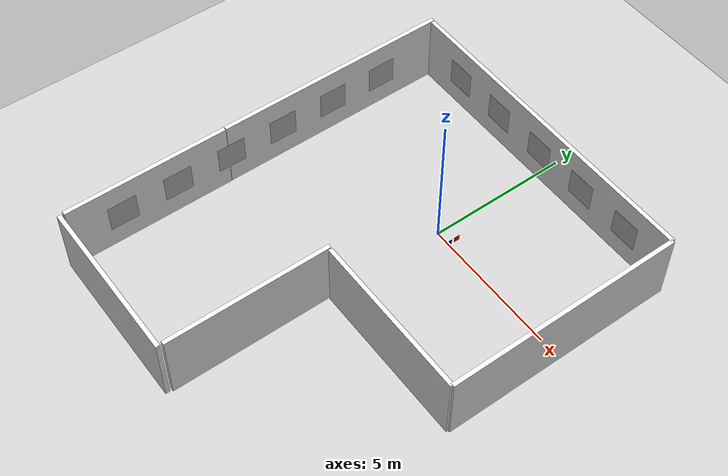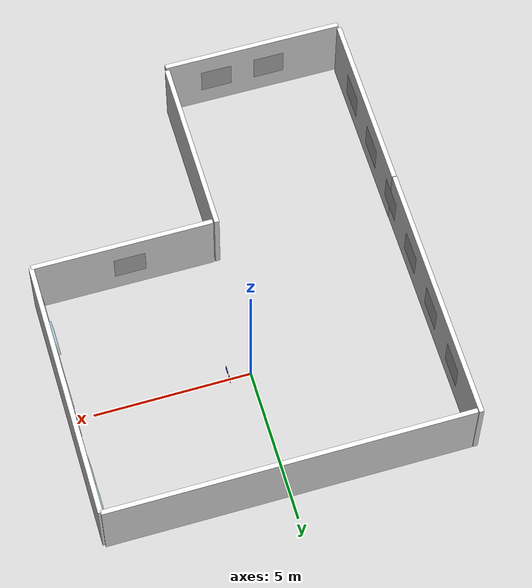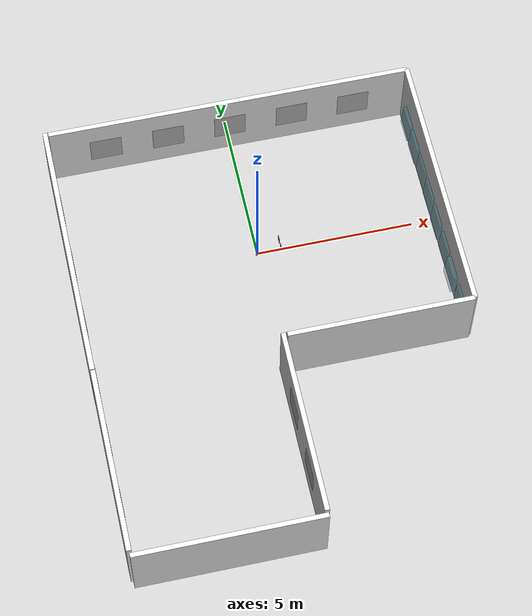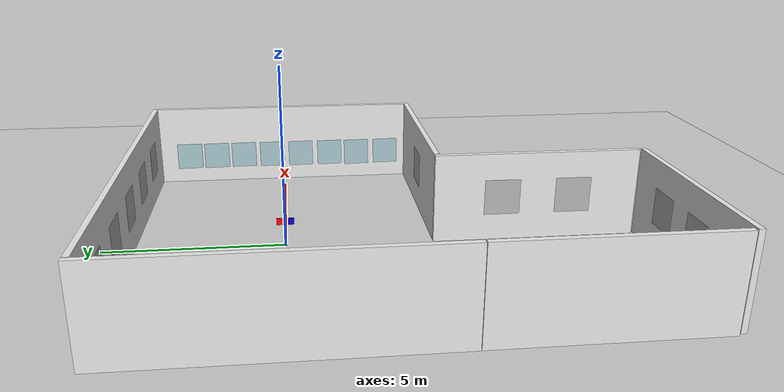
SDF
<sdf version="1.6">
 <world name="default">
  <light name="sun" type="directional">
   <pose>0 0 10 0 -0 0</pose>
   <diffuse>0.8 0.8 0.8 1</diffuse>
   <specular>0.2 0.2 0.2 1</specular>
   <attenuation>
    <range>1000</range>
    <constant>0.9</constant>
    <linear>0.01</linear>
    <quadratic>0.001</quadratic>
   </attenuation>
   <direction>-0.5 0.1 -0.9</direction>
  </light>
  <model name="ground_plane">
   <static>1</static>
   <link name="link">
    <collision name="collision">
     <geometry><plane><normal>0 0 1</normal><size>100 100</size></plane></geometry>
     <surface><friction><ode><mu>100</mu><mu2>50</mu2></ode></friction></surface>
    </collision>
    <visual name="visual">
     <cast_shadows>0</cast_shadows>
     <geometry><plane><normal>0 0 1</normal><size>100 100</size></plane></geometry>
     <material>
      <script><uri>file://media/materials/scripts/gazebo.material</uri><name>Gazebo/Grey</name></script>
     </material>
    </visual>
   </link>
  </model>
  <gravity>0 0 -9.8</gravity>
  <magnetic_field>6e-06 2.3e-05 -4.2e-05</magnetic_field>
  <atmosphere type="adiabatic"/>
  <physics name="default_physics" default="0" type="ode">
   <max_step_size>0.01</max_step_size>
   <real_time_factor>1</real_time_factor>
   <real_time_update_rate>100</real_time_update_rate>
  </physics>
  <scene><ambient>0.4 0.4 0.4 1</ambient><background>0.7 0.7 0.7 1</background><shadows>0</shadows></scene>
  <spherical_coordinates>
   <surface_model>EARTH_WGS84</surface_model>
   <latitude_deg>0</latitude_deg>
   <longitude_deg>0</longitude_deg>
   <elevation>0</elevation>
   <heading_deg>0</heading_deg>
  </spherical_coordinates>
  <model name="office_env_w2">
   <pose>0 4.162 1.25 0 -0 0</pose>
   <link name="Wall_10">
    <visual name="Wall_10_Visual_0">
     <geometry><box><size>11.466 0.15 2.5</size></box></geometry>
     <material>
      <script>
       <uri>model://office_env_w/materials/scripts</uri>
       <uri>model://office_env_w/materials/textures</uri>
       <name>wall_white</name>
      </script>
     </material>
     <meta><layer>0</layer></meta>
    </visual>
    <collision name="Wall_10_Collision_0"><geometry><box><size>11.466 0.15 2.5</size></box></geometry></collision>
   </link>
   <static>1</static>
  </model>
  <model name="office_env_w">
   <pose>5.733 0 1.25 0 -0 1.57</pose>
   <link name="Wall_10">
    <visual name="Wall_10_Visual_0">
     <geometry><box><size>8.324 0.15 2.5</size></box></geometry>
     <material>
      <script>
       <uri>model://office_env_w/materials/scripts</uri>
       <uri>model://office_env_w/materials/textures</uri>
       <name>wall_white</name>
      </script>
     </material>
     <meta><layer>0</layer></meta>
    </visual>
    <collision name="Wall_10_Collision_0"><geometry><box><size>8.324 0.15 2.5</size></box></geometry></collision>
   </link>
   <static>1</static>
  </model>
  <model name="office_env_w3">
   <pose>2.8655 -4.162 1.25 0 -0 0</pose>
   <link name="Wall_10">
    <visual name="Wall_10_Visual_0">
     <geometry><box><size>5.733 0.15 2.5</size></box></geometry>
     <material>
      <script>
       <uri>model://office_env_w/materials/scripts</uri>
       <uri>model://office_env_w/materials/textures</uri>
       <name>wall_white</name>
      </script>
     </material>
     <meta><layer>0</layer></meta>
    </visual>
    <collision name="Wall_10_Collision_0"><geometry><box><size>5.733 0.15 2.5</size></box></geometry></collision>
   </link>
   <static>1</static>
  </model>
  <model name="office_env_w3_clone">
   <pose>-0.116895 -6.96099 1.25 0 -0 1.57</pose>
   <link name="Wall_10">
    <visual name="Wall_10_Visual_0">
     <geometry><box><size>5.733 0.15 2.5</size></box></geometry>
     <material>
      <script>
       <uri>model://office_env_w/materials/scripts</uri>
       <uri>model://office_env_w/materials/textures</uri>
       <name>wall_white</name>
      </script>
     </material>
     <meta><layer>0</layer></meta>
    </visual>
    <collision name="Wall_10_Collision_0"><geometry><box><size>5.733 0.15 2.5</size></box></geometry></collision>
   </link>
   <static>1</static>
  </model>
  <model name="office_env_w_clone">
   <pose>-5.82948 0.079903 1.25 0 -0 1.57</pose>
   <link name="Wall_10">
    <visual name="Wall_10_Visual_0">
     <geometry><box><size>8.324 0.15 2.5</size></box></geometry>
     <material>
      <script>
       <uri>model://office_env_w/materials/scripts</uri>
       <uri>model://office_env_w/materials/textures</uri>
       <name>wall_white</name>
      </script>
     </material>
     <meta><layer>0</layer></meta>
    </visual>
    <collision name="Wall_10_Collision_0"><geometry><box><size>8.324 0.15 2.5</size></box></geometry></collision>
   </link>
   <static>1</static>
  </model>
  <model name="office_env_w3_clone_clone">
   <pose>-5.82704 -6.96526 1.25 0 -0 1.57</pose>
   <link name="Wall_10">
    <visual name="Wall_10_Visual_0">
     <geometry><box><size>5.733 0.15 2.5</size></box></geometry>
     <material>
      <script>
       <uri>model://office_env_w/materials/scripts</uri>
       <uri>model://office_env_w/materials/textures</uri>
       <name>wall_white</name>
      </script>
     </material>
     <meta><layer>0</layer></meta>
    </visual>
    <collision name="Wall_10_Collision_0"><geometry><box><size>5.733 0.15 2.5</size></box></geometry></collision>
   </link>
   <static>1</static>
  </model>
  <model name="office_env_w3_clone_0">
   <pose>-2.96341 -9.9742 1.25 0 -0 0</pose>
   <link name="Wall_10">
    <visual name="Wall_10_Visual_0">
     <geometry><box><size>5.733 0.15 2.5</size></box></geometry>
     <material>
      <script>
       <uri>model://office_env_w/materials/scripts</uri>
       <uri>model://office_env_w/materials/textures</uri>
       <name>wall_white</name>
      </script>
     </material>
     <meta><layer>0</layer></meta>
    </visual>
    <collision name="Wall_10_Collision_0"><geometry><box><size>5.733 0.15 2.5</size></box></geometry></collision>
   </link>
   <static>1</static>
  </model>
  <model name="window_3">
   <link name="link_2">
    <visual name="visual">
     <pose>0 0 0.9 0 -0 0</pose>
     <geometry><box><size>0.8 0.15 0.8</size></box></geometry>
     <material>
      <lighting>1</lighting>
      <ambient>0.1 0.5 0.6 1</ambient>
      <diffuse>0.1 0.5 0.6 1</diffuse>
      <specular>0.01 0.01 0.01 1</specular>
      <emissive>0 0 0 1</emissive>
     </material>
     <transparency>0.7</transparency>
    </visual>
    <collision name="collision">
     <pose>0 0 0.9 0 -0 0</pose>
     <geometry><box><size>0.8 0.15 0.8</size></box></geometry>
    </collision>
   </link>
   <static>1</static>
   <pose>5.55041 3.13004 -0.000428 0.072676 0.011663 1.57159</pose>
  </model>
  <model name="window_3_clone_clone">
   <link name="link_2">
    <visual name="visual">
     <pose>0 0 0.9 0 -0 0</pose>
     <geometry><box><size>0.8 0.15 0.8</size></box></geometry>
     <material>
      <lighting>1</lighting>
      <ambient>0.1 0.5 0.6 1</ambient>
      <diffuse>0.1 0.5 0.6 1</diffuse>
      <specular>0.01 0.01 0.01 1</specular>
      <emissive>0 0 0 1</emissive>
     </material>
     <transparency>0.7</transparency>
    </visual>
    <collision name="collision">
     <pose>0 0 0.9 0 -0 0</pose>
     <geometry><box><size>0.8 0.15 0.8</size></box></geometry>
    </collision>
   </link>
   <static>1</static>
   <pose>5.57835 0.394375 -0.000428 0.072676 0.011663 1.57159</pose>
  </model>
  <model name="window_3_clone_clone_0">
   <link name="link_2">
    <visual name="visual">
     <pose>0 0 0.9 0 -0 0</pose>
     <geometry><box><size>0.8 0.15 0.8</size></box></geometry>
     <material>
      <lighting>1</lighting>
      <ambient>0.1 0.5 0.6 1</ambient>
      <diffuse>0.1 0.5 0.6 1</diffuse>
      <specular>0.01 0.01 0.01 1</specular>
      <emissive>0 0 0 1</emissive>
     </material>
     <transparency>0.7</transparency>
    </visual>
    <collision name="collision">
     <pose>0 0 0.9 0 -0 0</pose>
     <geometry><box><size>0.8 0.15 0.8</size></box></geometry>
    </collision>
   </link>
   <static>1</static>
   <pose>5.57507 -1.53947 -0.000428 0.072676 0.011663 1.57159</pose>
  </model>
  <model name="window_3_clone_clone_1">
   <link name="link_2">
    <visual name="visual">
     <pose>0 0 0.9 0 -0 0</pose>
     <geometry><box><size>0.8 0.15 0.8</size></box></geometry>
     <material>
      <lighting>1</lighting>
      <ambient>0.1 0.5 0.6 1</ambient>
      <diffuse>0.1 0.5 0.6 1</diffuse>
      <specular>0.01 0.01 0.01 1</specular>
      <emissive>0 0 0 1</emissive>
     </material>
     <transparency>0.7</transparency>
    </visual>
    <collision name="collision">
     <pose>0 0 0.9 0 -0 0</pose>
     <geometry><box><size>0.8 0.15 0.8</size></box></geometry>
    </collision>
   </link>
   <static>1</static>
   <pose>5.57316 -3.44378 -0.000428 0.072676 0.011663 1.57159</pose>
  </model>
  <model name="window_3_clone_clone_2">
   <link name="link_2">
    <visual name="visual">
     <pose>0 0 0.9 0 -0 0</pose>
     <geometry><box><size>0.8 0.15 0.8</size></box></geometry>
     <material>
      <lighting>1</lighting>
      <ambient>0.1 0.5 0.6 1</ambient>
      <diffuse>0.1 0.5 0.6 1</diffuse>
      <specular>0.01 0.01 0.01 1</specular>
      <emissive>0 0 0 1</emissive>
     </material>
     <transparency>0.7</transparency>
    </visual>
    <collision name="collision">
     <pose>0 0 0.9 0 -0 0</pose>
     <geometry><box><size>0.8 0.15 0.8</size></box></geometry>
    </collision>
   </link>
   <static>1</static>
   <pose>5.51026 -2.44936 -0.000428 0.072676 0.011663 1.57159</pose>
  </model>
  <model name="window_3_clone_clone_3">
   <link name="link_2">
    <visual name="visual">
     <pose>0 0 0.9 0 -0 0</pose>
     <geometry><box><size>0.8 0.15 0.8</size></box></geometry>
     <material>
      <lighting>1</lighting>
      <ambient>0.1 0.5 0.6 1</ambient>
      <diffuse>0.1 0.5 0.6 1</diffuse>
      <specular>0.01 0.01 0.01 1</specular>
      <emissive>0 0 0 1</emissive>
     </material>
     <transparency>0.7</transparency>
    </visual>
    <collision name="collision">
     <pose>0 0 0.9 0 -0 0</pose>
     <geometry><box><size>0.8 0.15 0.8</size></box></geometry>
    </collision>
   </link>
   <static>1</static>
   <pose>5.56777 -0.565762 -0.000428 0.072676 0.011663 1.57159</pose>
  </model>
  <model name="window_3_clone_clone_4">
   <link name="link_2">
    <visual name="visual">
     <pose>0 0 0.9 0 -0 0</pose>
     <geometry><box><size>0.8 0.15 0.8</size></box></geometry>
     <material>
      <lighting>1</lighting>
      <ambient>0.1 0.5 0.6 1</ambient>
      <diffuse>0.1 0.5 0.6 1</diffuse>
      <specular>0.01 0.01 0.01 1</specular>
      <emissive>0 0 0 1</emissive>
     </material>
     <transparency>0.7</transparency>
    </visual>
    <collision name="collision">
     <pose>0 0 0.9 0 -0 0</pose>
     <geometry><box><size>0.8 0.15 0.8</size></box></geometry>
    </collision>
   </link>
   <static>1</static>
   <pose>5.59135 1.3384 -0.000428 0.072676 0.011663 1.57159</pose>
  </model>
  <model name="window_3_clone_clone_5">
   <link name="link_2">
    <visual name="visual">
     <pose>0 0 0.9 0 -0 0</pose>
     <geometry><box><size>0.8 0.15 0.8</size></box></geometry>
     <material>
      <lighting>1</lighting>
      <ambient>0.1 0.5 0.6 1</ambient>
      <diffuse>0.1 0.5 0.6 1</diffuse>
      <specular>0.01 0.01 0.01 1</specular>
      <emissive>0 0 0 1</emissive>
     </material>
     <transparency>0.7</transparency>
    </visual>
    <collision name="collision">
     <pose>0 0 0.9 0 -0 0</pose>
     <geometry><box><size>0.8 0.15 0.8</size></box></geometry>
    </collision>
   </link>
   <static>1</static>
   <pose>5.56149 2.2418 -0.000428 0.072676 0.011663 1.57159</pose>
  </model>
  <model name="neobotix_wall_stickers">
   <static>1</static>
   <link name="link">
    <collision name="collision">
     <geometry><plane><normal>0 0 1</normal><size>1 1</size></plane></geometry>
     <surface><friction><ode><mu>100</mu><mu2>50</mu2></ode></friction></surface>
    </collision>
    <visual name="visual">
     <cast_shadows>0</cast_shadows>
     <geometry><plane><normal>0 0 1</normal><size>1 1</size></plane></geometry>
     <material>
      <script>
       <uri>model://neobotix_wall_stickers/materials/scripts</uri>
       <uri>model://neobotix_wall_stickers/materials/textures/</uri>
       <name>NeobotixGroundPlane/Image</name>
      </script>
     </material>
    </visual>
   </link>
   <pose>0 4.07 1.25 1.57 -0 0</pose>
  </model>
  <model name="neobotix_wall_stickers_0">
   <static>1</static>
   <link name="link">
    <collision name="collision">
     <geometry><plane><normal>0 0 1</normal><size>1 1</size></plane></geometry>
     <surface><friction><ode><mu>100</mu><mu2>50</mu2></ode></friction></surface>
    </collision>
    <visual name="visual">
     <cast_shadows>0</cast_shadows>
     <geometry><plane><normal>0 0 1</normal><size>1 1</size></plane></geometry>
     <material>
      <script>
       <uri>model://neobotix_wall_stickers/materials/scripts</uri>
       <uri>model://neobotix_wall_stickers/materials/textures/</uri>
       <name>NeobotixGroundPlane/Image</name>
      </script>
     </material>
    </visual>
   </link>
   <pose>-2 4.07 1.25 1.57 -0 0</pose>
  </model>
  <model name="neobotix_wall_stickers_1">
   <static>1</static>
   <link name="link">
    <collision name="collision">
     <geometry><plane><normal>0 0 1</normal><size>1 1</size></plane></geometry>
     <surface><friction><ode><mu>100</mu><mu2>50</mu2></ode></friction></surface>
    </collision>
    <visual name="visual">
     <cast_shadows>0</cast_shadows>
     <geometry><plane><normal>0 0 1</normal><size>1 1</size></plane></geometry>
     <material>
      <script>
       <uri>model://neobotix_wall_stickers/materials/scripts</uri>
       <uri>model://neobotix_wall_stickers/materials/textures/</uri>
       <name>NeobotixGroundPlane/Image</name>
      </script>
     </material>
    </visual>
   </link>
   <pose>-4 4.07 1.25 1.57 -0 0</pose>
  </model>
  <model name="neobotix_wall_stickers_2">
   <static>1</static>
   <link name="link">
    <collision name="collision">
     <geometry><plane><normal>0 0 1</normal><size>1 1</size></plane></geometry>
     <surface><friction><ode><mu>100</mu><mu2>50</mu2></ode></friction></surface>
    </collision>
    <visual name="visual">
     <cast_shadows>0</cast_shadows>
     <geometry><plane><normal>0 0 1</normal><size>1 1</size></plane></geometry>
     <material>
      <script>
       <uri>model://neobotix_wall_stickers/materials/scripts</uri>
       <uri>model://neobotix_wall_stickers/materials/textures/</uri>
       <name>NeobotixGroundPlane/Image</name>
      </script>
     </material>
    </visual>
   </link>
   <pose>2 4.07 1.25 1.57 -0 0</pose>
  </model>
  <model name="neobotix_wall_stickers_3">
   <static>1</static>
   <link name="link">
    <collision name="collision">
     <geometry><plane><normal>0 0 1</normal><size>1 1</size></plane></geometry>
     <surface><friction><ode><mu>100</mu><mu2>50</mu2></ode></friction></surface>
    </collision>
    <visual name="visual">
     <cast_shadows>0</cast_shadows>
     <geometry><plane><normal>0 0 1</normal><size>1 1</size></plane></geometry>
     <material>
      <script>
       <uri>model://neobotix_wall_stickers/materials/scripts</uri>
       <uri>model://neobotix_wall_stickers/materials/textures/</uri>
       <name>NeobotixGroundPlane/Image</name>
      </script>
     </material>
    </visual>
   </link>
   <pose>4 4.07 1.25 1.57 -0 0</pose>
  </model>
  <model name="neobotix_wall_stickers_4">
   <static>1</static>
   <link name="link">
    <collision name="collision">
     <geometry><plane><normal>0 0 1</normal><size>1 1</size></plane></geometry>
     <surface><friction><ode><mu>100</mu><mu2>50</mu2></ode></friction></surface>
    </collision>
    <visual name="visual">
     <cast_shadows>0</cast_shadows>
     <geometry><plane><normal>0 0 1</normal><size>1 1</size></plane></geometry>
     <material>
      <script>
       <uri>model://neobotix_wall_stickers/materials/scripts</uri>
       <uri>model://neobotix_wall_stickers/materials/textures/</uri>
       <name>NeobotixGroundPlane/Image</name>
      </script>
     </material>
    </visual>
   </link>
   <pose>2.7 -4.07 1.25 1.57159 0.001593 3.14159</pose>
  </model>
  <model name="neobotix_wall_stickers_5">
   <static>1</static>
   <link name="link">
    <collision name="collision">
     <geometry><plane><normal>0 0 1</normal><size>1 1</size></plane></geometry>
     <surface><friction><ode><mu>100</mu><mu2>50</mu2></ode></friction></surface>
    </collision>
    <visual name="visual">
     <cast_shadows>0</cast_shadows>
     <geometry><plane><normal>0 0 1</normal><size>1 1</size></plane></geometry>
     <material>
      <script>
       <uri>model://neobotix_wall_stickers/materials/scripts</uri>
       <uri>model://neobotix_wall_stickers/materials/textures/</uri>
       <name>NeobotixGroundPlane/Image</name>
      </script>
     </material>
    </visual>
   </link>
   <pose>-5.732 0 1.25 1.57 -0 1.57</pose>
  </model>
  <model name="neobotix_wall_stickers_6">
   <static>1</static>
   <link name="link">
    <collision name="collision">
     <geometry><plane><normal>0 0 1</normal><size>1 1</size></plane></geometry>
     <surface><friction><ode><mu>100</mu><mu2>50</mu2></ode></friction></surface>
    </collision>
    <visual name="visual">
     <cast_shadows>0</cast_shadows>
     <geometry><plane><normal>0 0 1</normal><size>1 1</size></plane></geometry>
     <material>
      <script>
       <uri>model://neobotix_wall_stickers/materials/scripts</uri>
       <uri>model://neobotix_wall_stickers/materials/textures/</uri>
       <name>NeobotixGroundPlane/Image</name>
      </script>
     </material>
    </visual>
   </link>
   <pose>-5.732 -2 1.25 1.57 -0 1.57</pose>
  </model>
  <model name="neobotix_wall_stickers_7">
   <static>1</static>
   <link name="link">
    <collision name="collision">
     <geometry><plane><normal>0 0 1</normal><size>1 1</size></plane></geometry>
     <surface><friction><ode><mu>100</mu><mu2>50</mu2></ode></friction></surface>
    </collision>
    <visual name="visual">
     <cast_shadows>0</cast_shadows>
     <geometry><plane><normal>0 0 1</normal><size>1 1</size></plane></geometry>
     <material>
      <script>
       <uri>model://neobotix_wall_stickers/materials/scripts</uri>
       <uri>model://neobotix_wall_stickers/materials/textures/</uri>
       <name>NeobotixGroundPlane/Image</name>
      </script>
     </material>
    </visual>
   </link>
   <pose>-5.732 2 1.25 1.57 -0 1.57</pose>
  </model>
  <model name="neobotix_wall_stickers_8">
   <static>1</static>
   <link name="link">
    <collision name="collision">
     <geometry><plane><normal>0 0 1</normal><size>1 1</size></plane></geometry>
     <surface><friction><ode><mu>100</mu><mu2>50</mu2></ode></friction></surface>
    </collision>
    <visual name="visual">
     <cast_shadows>0</cast_shadows>
     <geometry><plane><normal>0 0 1</normal><size>1 1</size></plane></geometry>
     <material>
      <script>
       <uri>model://neobotix_wall_stickers/materials/scripts</uri>
       <uri>model://neobotix_wall_stickers/materials/textures/</uri>
       <name>NeobotixGroundPlane/Image</name>
      </script>
     </material>
    </visual>
   </link>
   <pose>-5.732 -4 1.25 1.57 -0 1.57</pose>
  </model>
  <model name="neobotix_wall_stickers_9">
   <static>1</static>
   <link name="link">
    <collision name="collision">
     <geometry><plane><normal>0 0 1</normal><size>1 1</size></plane></geometry>
     <surface><friction><ode><mu>100</mu><mu2>50</mu2></ode></friction></surface>
    </collision>
    <visual name="visual">
     <cast_shadows>0</cast_shadows>
     <geometry><plane><normal>0 0 1</normal><size>1 1</size></plane></geometry>
     <material>
      <script>
       <uri>model://neobotix_wall_stickers/materials/scripts</uri>
       <uri>model://neobotix_wall_stickers/materials/textures/</uri>
       <name>NeobotixGroundPlane/Image</name>
      </script>
     </material>
    </visual>
   </link>
   <pose>-5.732 -6 1.25 1.57 -0 1.57</pose>
  </model>
  <model name="neobotix_wall_stickers_10">
   <static>1</static>
   <link name="link">
    <collision name="collision">
     <geometry><plane><normal>0 0 1</normal><size>1 1</size></plane></geometry>
     <surface><friction><ode><mu>100</mu><mu2>50</mu2></ode></friction></surface>
    </collision>
    <visual name="visual">
     <cast_shadows>0</cast_shadows>
     <geometry><plane><normal>0 0 1</normal><size>1 1</size></plane></geometry>
     <material>
      <script>
       <uri>model://neobotix_wall_stickers/materials/scripts</uri>
       <uri>model://neobotix_wall_stickers/materials/textures/</uri>
       <name>NeobotixGroundPlane/Image</name>
      </script>
     </material>
    </visual>
   </link>
   <pose>-5.732 -8 1.25 1.57 -0 1.57</pose>
  </model>
  <model name="neobotix_wall_stickers_11">
   <static>1</static>
   <link name="link">
    <collision name="collision">
     <geometry><plane><normal>0 0 1</normal><size>1 1</size></plane></geometry>
     <surface><friction><ode><mu>100</mu><mu2>50</mu2></ode></friction></surface>
    </collision>
    <visual name="visual">
     <cast_shadows>0</cast_shadows>
     <geometry><plane><normal>0 0 1</normal><size>1 1</size></plane></geometry>
     <material>
      <script>
       <uri>model://neobotix_wall_stickers/materials/scripts</uri>
       <uri>model://neobotix_wall_stickers/materials/textures/</uri>
       <name>NeobotixGroundPlane/Image</name>
      </script>
     </material>
    </visual>
   </link>
   <pose>-0.2 -8 1.25 1.57159 0.001593 -1.57159</pose>
  </model>
  <model name="neobotix_wall_stickers_12">
   <static>1</static>
   <link name="link">
    <collision name="collision">
     <geometry><plane><normal>0 0 1</normal><size>1 1</size></plane></geometry>
     <surface><friction><ode><mu>100</mu><mu2>50</mu2></ode></friction></surface>
    </collision>
    <visual name="visual">
     <cast_shadows>0</cast_shadows>
     <geometry><plane><normal>0 0 1</normal><size>1 1</size></plane></geometry>
     <material>
      <script>
       <uri>model://neobotix_wall_stickers/materials/scripts</uri>
       <uri>model://neobotix_wall_stickers/materials/textures/</uri>
       <name>NeobotixGroundPlane/Image</name>
      </script>
     </material>
    </visual>
   </link>
   <pose>-0.2 -6 1.25 1.57159 0.001593 -1.57159</pose>
  </model>
  <model name="neobotix_wall_stickers_13">
   <static>1</static>
   <link name="link">
    <collision name="collision">
     <geometry><plane><normal>0 0 1</normal><size>1 1</size></plane></geometry>
     <surface><friction><ode><mu>100</mu><mu2>50</mu2></ode></friction></surface>
    </collision>
    <visual name="visual">
     <cast_shadows>0</cast_shadows>
     <geometry><plane><normal>0 0 1</normal><size>1 1</size></plane></geometry>
     <material>
      <script>
       <uri>model://neobotix_wall_stickers/materials/scripts</uri>
       <uri>model://neobotix_wall_stickers/materials/textures/</uri>
       <name>NeobotixGroundPlane/Image</name>
      </script>
     </material>
    </visual>
   </link>
   <pose>-1.7445 -9.89 1.25 1.57159 0.001593 3.14159</pose>
  </model>
  <model name="neobotix_wall_stickers_14">
   <static>1</static>
   <link name="link">
    <collision name="collision">
     <geometry><plane><normal>0 0 1</normal><size>1 1</size></plane></geometry>
     <surface><friction><ode><mu>100</mu><mu2>50</mu2></ode></friction></surface>
    </collision>
    <visual name="visual">
     <cast_shadows>0</cast_shadows>
     <geometry><plane><normal>0 0 1</normal><size>1 1</size></plane></geometry>
     <material>
      <script>
       <uri>model://neobotix_wall_stickers/materials/scripts</uri>
       <uri>model://neobotix_wall_stickers/materials/textures/</uri>
       <name>NeobotixGroundPlane/Image</name>
      </script>
     </material>
    </visual>
   </link>
   <pose>-3.489 -9.89 1.25 1.57 -0 -3.14</pose>
  </model>
  <light name="user_point_light_0" type="point">
   <pose>3.54976 1.43038 1 0 -0 0</pose>
   <diffuse>0.5 0.5 0.5 1</diffuse>
   <specular>0.1 0.1 0.1 1</specular>
   <attenuation>
    <range>20</range>
    <constant>0.5</constant>
    <linear>0.01</linear>
    <quadratic>0.001</quadratic>
   </attenuation>
   <cast_shadows>0</cast_shadows>
   <direction>0 0 -1</direction>
  </light>
  <light name="user_point_light_0_clone" type="point">
   <pose>-8.02842 6.22549 7.18798 0 -0 0</pose>
   <diffuse>0.5 0.5 0.5 1</diffuse>
   <specular>0.1 0.1 0.1 1</specular>
   <direction>0 0 -1</direction>
   <attenuation>
    <range>20</range>
    <constant>0.5</constant>
    <linear>0.01</linear>
    <quadratic>0.001</quadratic>
   </attenuation>
   <cast_shadows>0</cast_shadows>
  </light>
  <model name="red_block">
   <pose>0.728 0.15 0.4 0 0 0</pose>
   <static>true</static>
   <link name="blob_link">
    <inertial>
     <mass>1.0</mass>
     <inertia><ixx>0.083</ixx><ixy>0.0</ixy><ixz>0.0</ixz><iyy>0.083</iyy><iyz>0.0</iyz><izz>0.083</izz></inertia>
    </inertial>
    <collision name="collision"><geometry><box><size>0.01 0.2 0.2</size></box></geometry></collision>
    <visual name="visual">
     <geometry><box><size>0.01 0.2 0.2</size></box></geometry>
     <material>
      <ambient>1 0 0 1</ambient>
      <emissive>1 0 0 1</emissive>
      <diffuse>1 0 0 1</diffuse>
      <specular>1 0 0 1</specular>
     </material>
    </visual>
   </link>
  </model>
  <model name="blue_block">
   <pose>0.728 -0.15 0.4 0 0 0</pose>
   <static>true</static>
   <link name="blob_link">
    <inertial>
     <mass>1.0</mass>
     <inertia><ixx>0.083</ixx><ixy>0.0</ixy><ixz>0.0</ixz><iyy>0.083</iyy><iyz>0.0</iyz><izz>0.083</izz></inertia>
    </inertial>
    <collision name="collision"><geometry><box><size>0.01 0.2 0.2</size></box></geometry></collision>
    <visual name="visual">
     <geometry><box><size>0.01 0.2 0.2</size></box></geometry>
     <material>
      <ambient>0 0 0.75 1</ambient>
      <emissive>0 0 0.75 1</emissive>
      <diffuse>0 0 0.75 1</diffuse>
      <specular>0 0 0.75 1</specular>
     </material>
    </visual>
   </link>
  </model>
  <model name="red_floor_block">
   <static>true</static>
   <link name="blob_link">
    <inertial>
     <mass>1.0</mass>
     <inertia><ixx>0.083</ixx><ixy>0.0</ixy><ixz>0.0</ixz><iyy>0.083</iyy><iyz>0.0</iyz><izz>0.083</izz></inertia>
    </inertial>
    <collision name="collision"><geometry><box><size>0.1 0.1 0.01</size></box></geometry></collision>
    <visual name="visual">
     <geometry><box><size>0.1 0.1 0.01</size></box></geometry>
     <material>
      <ambient>1 0 0 1</ambient>
      <emissive>1 0 0 1</emissive>
      <diffuse>1 0 0 1</diffuse>
      <specular>1 0 0 1</specular>
     </material>
    </visual>
   </link>
  </model>
 </world>
</sdf>
